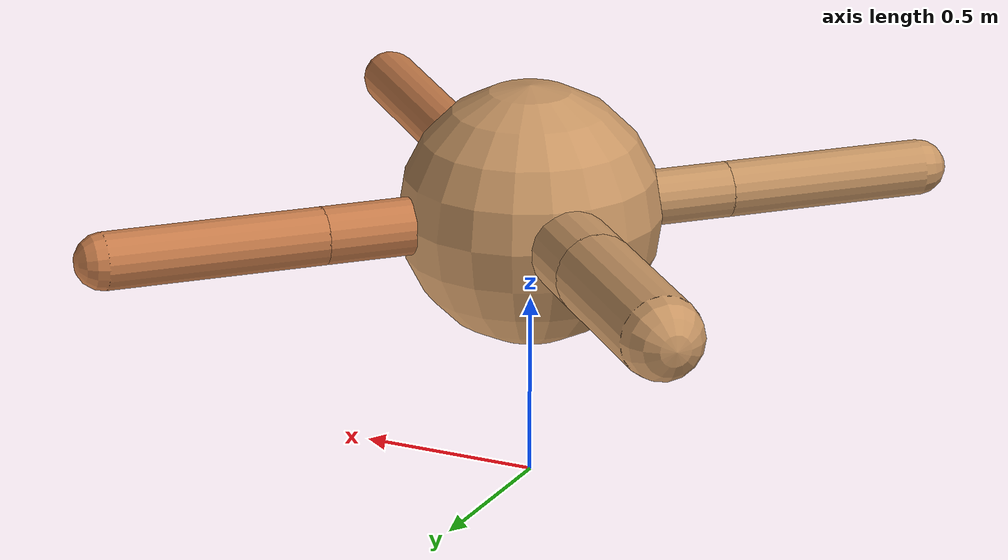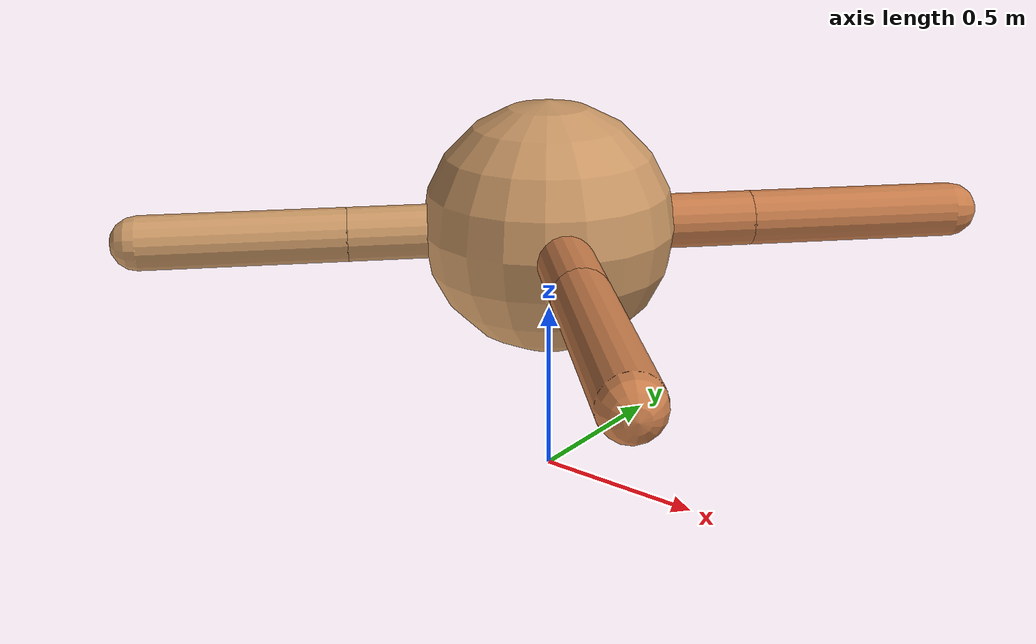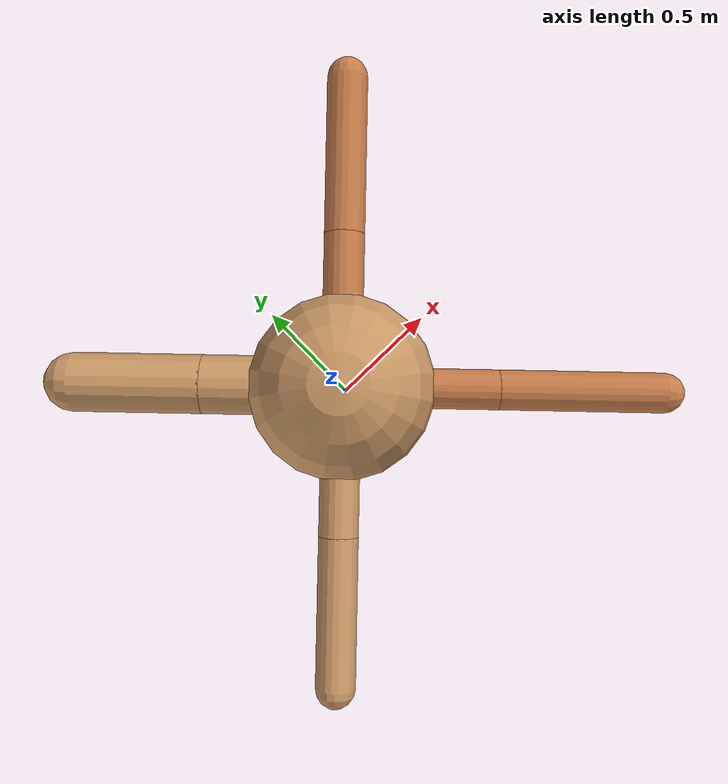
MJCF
<?xml version="1.0" ?>
<mujoco model="ant">

	<compiler angle="degree" coordinate="local" inertiafromgeom="true"/>

	<option integrator="RK4" timestep="0.01"/>

	<custom>

		<numeric data="0.0 0.0 0.55 1.0 0.0 0.0 0.0 0.0 1.0 0.0 -1.0 0.0 -1.0 0.0 1.0" name="init_qpos"/>

	</custom>

	<default>

		<joint armature="1" damping="1" limited="true"/>

		<geom conaffinity="0" condim="3" density="5.0" friction="1.5 0.1 0.1" margin="0.01" rgba="0.8 0.6 0.4 1"/>

	</default>

	<worldbody>

		<body name="torso" pos="0 0 0.75">

			<geom name="torso_geom" pos="0 0 0" size="0.3599848306143563" type="sphere"/>

			<!--joint armature="0" damping="0" limited="false" margin="0.01" name="root" pos="0 0 0" type="free"/-->

			<body name="front_left_leg" pos="0 0 0">

				<geom fromto="0 0 0 0.2 0.2 0" name="aux_1_geom" size="0.0790565714657334" type="capsule" rgba=".8 .5 .3 1"/>

				<body name="aux_1" pos="0.2 0.2 0">

					<joint axis="0 0 1" name="hip_1" pos="0.0 0.0 0.0" range="-40 40" type="hinge"/>

					<geom fromto="0 0 0 0.21524039817299095 0.21524039817299095 0" name="left_leg_geom" size="0.0790565714657334" type="capsule" rgba=".8 .5 .3 1"/>

					<body pos="0.21524039817299095 0.21524039817299095 0" name="front_left_foot">

						<joint axis="-1 1 0" name="ankle_1" pos="0.0 0.0 0.0" range="30 100" type="hinge"/>

						<geom fromto="0 0 0 0.4304807963459819 0.4304807963459819 0" name="left_ankle_geom" size="0.0790565714657334" type="capsule" rgba=".8 .5 .3 1"/>

					</body>

				</body>

			</body>

			<body name="front_right_leg" pos="0 0 0">

				<geom fromto="0 0 0 -0.2 0.2 0" name="aux_2_geom" size="0.11425845148467242" type="capsule"/>

				<body name="aux_2" pos="-0.2 0.2 0">

					<joint axis="0 0 1" name="hip_2" pos="0.0 0.0 0.0" range="-40 40" type="hinge"/>

					<geom fromto="0 0 0 -0.17275504116509152 0.17275504116509152 0" name="right_leg_geom" size="0.11425845148467242" type="capsule"/>

					<body pos="-0.17275504116509152 0.17275504116509152 0" name="front_right_foot">

						<joint axis="1 1 0" name="ankle_2" pos="0.0 0.0 0.0" range="-100 -30" type="hinge"/>

						<geom fromto="0 0 0 -0.34551008233018304 0.34551008233018304 0" name="right_ankle_geom" size="0.11425845148467242" type="capsule"/>

					</body>

				</body>

			</body>

			<body name="left_back_leg" pos="0 0 0">

				<geom fromto="0 0 0 -0.2 -0.2 0" name="aux_3_geom" size="0.07670300347512635" type="capsule"/>

				<body name="aux_3" pos="-0.2 -0.2 0">

					<joint axis="0 0 1" name="hip_3" pos="0.0 0.0 0.0" range="-40 40" type="hinge"/>

					<geom fromto="0 0 0 -0.20046434342147934 -0.20046434342147934 0" name="back_leg_geom" size="0.07670300347512635" type="capsule"/>

					<body pos="-0.20046434342147934 -0.20046434342147934 0" name="left_back_foot">

						<joint axis="-1 1 0" name="ankle_3" pos="0.0 0.0 0.0" range="-100 -30" type="hinge"/>

						<geom fromto="0 0 0 -0.4009286868429587 -0.4009286868429587 0" name="third_ankle_geom" size="0.07670300347512635" type="capsule"/>

					</body>

				</body>

			</body>

			<body name="right_back_leg" pos="0 0 0">

				<geom fromto="0 0 0 0.2 -0.2 0" name="aux_4_geom" size="0.07765723412921315" type="capsule" rgba=".8 .5 .3 1"/>

				<body name="aux_4" pos="0.2 -0.2 0">

					<joint axis="0 0 1" name="hip_4" pos="0.0 0.0 0.0" range="-40 40" type="hinge"/>

					<geom fromto="0 0 0 0.22242150052872925 -0.22242150052872925 0" name="rightback_leg_geom" size="0.07765723412921315" type="capsule" rgba=".8 .5 .3 1"/>

					<body pos="0.22242150052872925 -0.22242150052872925 0" name="right_back_foot">

						<joint axis="1 1 0" name="ankle_4" pos="0.0 0.0 0.0" range="30 100" type="hinge"/>

						<geom fromto="0 0 0 0.4448430010574585 -0.4448430010574585 0" name="fourth_ankle_geom" size="0.07765723412921315" type="capsule" rgba=".8 .5 .3 1"/>

					</body>

				</body>

			</body>

		</body>

	</worldbody>

	<actuator>

		<motor ctrllimited="true" ctrlrange="-1.0 1.0" joint="hip_4" gear="150"/>

		<motor ctrllimited="true" ctrlrange="-1.0 1.0" joint="ankle_4" gear="150"/>

		<motor ctrllimited="true" ctrlrange="-1.0 1.0" joint="hip_1" gear="150"/>

		<motor ctrllimited="true" ctrlrange="-1.0 1.0" joint="ankle_1" gear="150"/>

		<motor ctrllimited="true" ctrlrange="-1.0 1.0" joint="hip_2" gear="150"/>

		<motor ctrllimited="true" ctrlrange="-1.0 1.0" joint="ankle_2" gear="150"/>

		<motor ctrllimited="true" ctrlrange="-1.0 1.0" joint="hip_3" gear="150"/>

		<motor ctrllimited="true" ctrlrange="-1.0 1.0" joint="ankle_3" gear="150"/>

	</actuator>

</mujoco>
